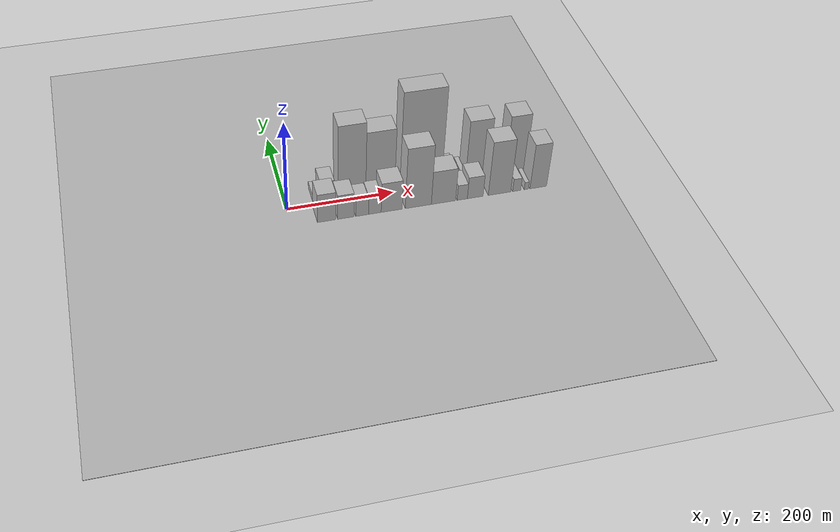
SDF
<?xml version="1.0" encoding="utf-8"?>

<sdf version="1.6">

   <world name="default">

      <gui fullscreen="0">

         <camera name="user_camera">

            <pose>-15 0 4.57585 0 0 0</pose>

            <view_controller>orbit</view_controller>

         </camera>

      </gui>

      <scene>

         <sky>

           <clouds>

             <speed>12</speed>

           </clouds>

         </sky>

         <ambient>0.4 0.4 0.4 1</ambient>

         <background>0.7 0.7 0.7 1</background>

         <shadows>1</shadows>

      </scene>

      <gravity>0 0 -9.8066</gravity>

      <magnetic_field>6e-06 2.3e-05 -4.2e-05</magnetic_field>

      <physics default="0" name="default_physics" type="ode">

         <ode>

            <solver>

               <type>quick</type>

               <iters>10</iters>

               <sor>1.0</sor>

               <use_dynamic_moi_rescaling>0</use_dynamic_moi_rescaling>

            </solver>

            <constraints>

               <cfm>0</cfm>

               <erp>0.2</erp>

               <contact_max_correcting_vel>100</contact_max_correcting_vel>

               <contact_surface_layer>0.001</contact_surface_layer>

            </constraints>

         </ode>

         <max_step_size>0.004</max_step_size>

         <real_time_factor>1</real_time_factor>

         <real_time_update_rate>250</real_time_update_rate>

      </physics>

      <light name="sun" type="directional">

         <cast_shadows>1</cast_shadows>

         <pose>0 0 10 0 0 0</pose>

         <diffuse>0.8 0.8 0.8 1</diffuse>

         <specular>0.2 0.2 0.2 1</specular>

         <attenuation>

            <range>1000</range>

            <constant>0.9</constant>

            <linear>0.01</linear>

            <quadratic>0.001</quadratic>

         </attenuation>

         <direction>-0.5 0.1 -0.9</direction>

      </light>

      <include>

         <name>ground_plane_1</name>

         <uri>model://HANNAS_ground_plane</uri>

         <pose>0 0 0  0 0 0</pose>

      </include>

      <include>

         <name>ground_plane_2</name>

         <uri>model://HANNAS_ground_plane</uri>

         <pose>100 0 0  0 0 0</pose>

      </include>

      <model name="building_1">

         <static>1</static>

         <pose frame="">52.5862 27.5000 0 0.000000 0.000000 1.570796</pose>

         <link name="link">

            <pose frame="">0 0 7.50 0 0 0</pose>

            <collision name="collision">

               <geometry>

                  <box>

                     <size>40.0000 7.1725 15.0000</size>

                  </box>

               </geometry>

               <max_contacts>10</max_contacts>

               <surface>

                  <contact>

                     <ode/>

                  </contact>

                  <bounce/>

                  <friction>

                     <torsional>

                        <ode/>

                     </torsional>

                     <ode/>

                  </friction>

               </surface>

            </collision>

            <visual name="visual">

               <cast_shadows>0</cast_shadows>

               <geometry>

                  <box>

                     <size>40.0000 7.1725 15.0000</size>

                  </box>

               </geometry>

               <material>

                  <script>

                     <uri>model://HANNAS_wall/materials/scripts</uri>

                     <uri>model://HANNAS_wall/materials/textures</uri>

                     <name>vrc/HANNAS_wall</name>

                  </script>

               </material>

            </visual>

            <self_collide>0</self_collide>

            <enable_wind>0</enable_wind>

            <kinematic>0</kinematic>

         </link>

      </model>

      <model name="building_2">

         <static>1</static>

         <pose frame="">59.6417 27.5000 0 0.000000 0.000000 1.570796</pose>

         <link name="link">

            <pose frame="">0 0 7.50 0 0 0</pose>

            <collision name="collision">

               <geometry>

                  <box>

                     <size>40.0000 6.9385 15.0000</size>

                  </box>

               </geometry>

               <max_contacts>10</max_contacts>

               <surface>

                  <contact>

                     <ode/>

                  </contact>

                  <bounce/>

                  <friction>

                     <torsional>

                        <ode/>

                     </torsional>

                     <ode/>

                  </friction>

               </surface>

            </collision>

            <visual name="visual">

               <cast_shadows>0</cast_shadows>

               <geometry>

                  <box>

                     <size>40.0000 6.9385 15.0000</size>

                  </box>

               </geometry>

               <material>

                  <script>

                     <uri>model://HANNAS_wall/materials/scripts</uri>

                     <uri>model://HANNAS_wall/materials/textures</uri>

                     <name>vrc/HANNAS_wall</name>

                  </script>

               </material>

            </visual>

            <self_collide>0</self_collide>

            <enable_wind>0</enable_wind>

            <kinematic>0</kinematic>

         </link>

      </model>

      <model name="building_3">

         <static>1</static>

         <pose frame="">76.4213 27.5000 0 0.000000 0.000000 1.570796</pose>

         <link name="link">

            <pose frame="">0 0 22.50 0 0 0</pose>

            <collision name="collision">

               <geometry>

                  <box>

                     <size>40.0000 26.6205 45.0000</size>

                  </box>

               </geometry>

               <max_contacts>10</max_contacts>

               <surface>

                  <contact>

                     <ode/>

                  </contact>

                  <bounce/>

                  <friction>

                     <torsional>

                        <ode/>

                     </torsional>

                     <ode/>

                  </friction>

               </surface>

            </collision>

            <visual name="visual">

               <cast_shadows>0</cast_shadows>

               <geometry>

                  <box>

                     <size>40.0000 26.6205 45.0000</size>

                  </box>

               </geometry>

               <material>

                  <script>

                     <uri>model://HANNAS_wall/materials/scripts</uri>

                     <uri>model://HANNAS_wall/materials/textures</uri>

                     <name>vrc/HANNAS_wall</name>

                  </script>

               </material>

            </visual>

            <self_collide>0</self_collide>

            <enable_wind>0</enable_wind>

            <kinematic>0</kinematic>

         </link>

      </model>

      <model name="building_4">

         <static>1</static>

         <pose frame="">122.6870 27.5000 0 0.000000 0.000000 1.570796</pose>

         <link name="link">

            <pose frame="">0 0 84.00 0 0 0</pose>

            <collision name="collision">

               <geometry>

                  <box>

                     <size>40.0000 51.9109 168.0000</size>

                  </box>

               </geometry>

               <max_contacts>10</max_contacts>

               <surface>

                  <contact>

                     <ode/>

                  </contact>

                  <bounce/>

                  <friction>

                     <torsional>

                        <ode/>

                     </torsional>

                     <ode/>

                  </friction>

               </surface>

            </collision>

            <visual name="visual">

               <cast_shadows>0</cast_shadows>

               <geometry>

                  <box>

                     <size>40.0000 51.9109 168.0000</size>

                  </box>

               </geometry>

               <material>

                  <script>

                     <uri>model://HANNAS_wall/materials/scripts</uri>

                     <uri>model://HANNAS_wall/materials/textures</uri>

                     <name>vrc/HANNAS_wall</name>

                  </script>

               </material>

            </visual>

            <self_collide>0</self_collide>

            <enable_wind>0</enable_wind>

            <kinematic>0</kinematic>

         </link>

      </model>

      <model name="building_5">

         <static>1</static>

         <pose frame="">176.1546 27.5000 0 0.000000 0.000000 1.570796</pose>

         <link name="link">

            <pose frame="">0 0 72.00 0 0 0</pose>

            <collision name="collision">

               <geometry>

                  <box>

                     <size>40.0000 55.0244 144.0000</size>

                  </box>

               </geometry>

               <max_contacts>10</max_contacts>

               <surface>

                  <contact>

                     <ode/>

                  </contact>

                  <bounce/>

                  <friction>

                     <torsional>

                        <ode/>

                     </torsional>

                     <ode/>

                  </friction>

               </surface>

            </collision>

            <visual name="visual">

               <cast_shadows>0</cast_shadows>

               <geometry>

                  <box>

                     <size>40.0000 55.0244 144.0000</size>

                  </box>

               </geometry>

               <material>

                  <script>

                     <uri>model://HANNAS_wall/materials/scripts</uri>

                     <uri>model://HANNAS_wall/materials/textures</uri>

                     <name>vrc/HANNAS_wall</name>

                  </script>

               </material>

            </visual>

            <self_collide>0</self_collide>

            <enable_wind>0</enable_wind>

            <kinematic>0</kinematic>

         </link>

      </model>

      <model name="building_6">

         <static>1</static>

         <pose frame="">253.8679 27.5000 0 0.000000 0.000000 1.570796</pose>

         <link name="link">

            <pose frame="">0 0 111.00 0 0 0</pose>

            <collision name="collision">

               <geometry>

                  <box>

                     <size>40.0000 80.4021 222.0000</size>

                  </box>

               </geometry>

               <max_contacts>10</max_contacts>

               <surface>

                  <contact>

                     <ode/>

                  </contact>

                  <bounce/>

                  <friction>

                     <torsional>

                        <ode/>

                     </torsional>

                     <ode/>

                  </friction>

               </surface>

            </collision>

            <visual name="visual">

               <cast_shadows>0</cast_shadows>

               <geometry>

                  <box>

                     <size>40.0000 80.4021 222.0000</size>

                  </box>

               </geometry>

               <material>

                  <script>

                     <uri>model://HANNAS_wall/materials/scripts</uri>

                     <uri>model://HANNAS_wall/materials/textures</uri>

                     <name>vrc/HANNAS_wall</name>

                  </script>

               </material>

            </visual>

            <self_collide>0</self_collide>

            <enable_wind>0</enable_wind>

            <kinematic>0</kinematic>

         </link>

      </model>

      <model name="building_7">

         <static>1</static>

         <pose frame="">310.3501 27.5000 0 0.000000 0.000000 1.570796</pose>

         <link name="link">

            <pose frame="">0 0 16.50 0 0 0</pose>

            <collision name="collision">

               <geometry>

                  <box>

                     <size>40.0000 16.5623 33.0000</size>

                  </box>

               </geometry>

               <max_contacts>10</max_contacts>

               <surface>

                  <contact>

                     <ode/>

                  </contact>

                  <bounce/>

                  <friction>

                     <torsional>

                        <ode/>

                     </torsional>

                     <ode/>

                  </friction>

               </surface>

            </collision>

            <visual name="visual">

               <cast_shadows>0</cast_shadows>

               <geometry>

                  <box>

                     <size>40.0000 16.5623 33.0000</size>

                  </box>

               </geometry>

               <material>

                  <script>

                     <uri>model://HANNAS_wall/materials/scripts</uri>

                     <uri>model://HANNAS_wall/materials/textures</uri>

                     <name>vrc/HANNAS_wall</name>

                  </script>

               </material>

            </visual>

            <self_collide>0</self_collide>

            <enable_wind>0</enable_wind>

            <kinematic>0</kinematic>

         </link>

      </model>

      <model name="building_8">

         <static>1</static>

         <pose frame="">333.0419 27.5000 0 0.000000 0.000000 1.570796</pose>

         <link name="link">

            <pose frame="">0 0 10.50 0 0 0</pose>

            <collision name="collision">

               <geometry>

                  <box>

                     <size>40.0000 8.8214 21.0000</size>

                  </box>

               </geometry>

               <max_contacts>10</max_contacts>

               <surface>

                  <contact>

                     <ode/>

                  </contact>

                  <bounce/>

                  <friction>

                     <torsional>

                        <ode/>

                     </torsional>

                     <ode/>

                  </friction>

               </surface>

            </collision>

            <visual name="visual">

               <cast_shadows>0</cast_shadows>

               <geometry>

                  <box>

                     <size>40.0000 8.8214 21.0000</size>

                  </box>

               </geometry>

               <material>

                  <script>

                     <uri>model://HANNAS_wall/materials/scripts</uri>

                     <uri>model://HANNAS_wall/materials/textures</uri>

                     <name>vrc/HANNAS_wall</name>

                  </script>

               </material>

            </visual>

            <self_collide>0</self_collide>

            <enable_wind>0</enable_wind>

            <kinematic>0</kinematic>

         </link>

      </model>

      <model name="building_9">

         <static>1</static>

         <pose frame="">363.0680 27.5000 0 0.000000 0.000000 1.570796</pose>

         <link name="link">

            <pose frame="">0 0 67.50 0 0 0</pose>

            <collision name="collision">

               <geometry>

                  <box>

                     <size>40.0000 45.2308 135.0000</size>

                  </box>

               </geometry>

               <max_contacts>10</max_contacts>

               <surface>

                  <contact>

                     <ode/>

                  </contact>

                  <bounce/>

                  <friction>

                     <torsional>

                        <ode/>

                     </torsional>

                     <ode/>

                  </friction>

               </surface>

            </collision>

            <visual name="visual">

               <cast_shadows>0</cast_shadows>

               <geometry>

                  <box>

                     <size>40.0000 45.2308 135.0000</size>

                  </box>

               </geometry>

               <material>

                  <script>

                     <uri>model://HANNAS_wall/materials/scripts</uri>

                     <uri>model://HANNAS_wall/materials/textures</uri>

                     <name>vrc/HANNAS_wall</name>

                  </script>

               </material>

            </visual>

            <self_collide>0</self_collide>

            <enable_wind>0</enable_wind>

            <kinematic>0</kinematic>

         </link>

      </model>

      <model name="building_10">

         <static>1</static>

         <pose frame="">398.0958 27.5000 0 0.000000 0.000000 1.570796</pose>

         <link name="link">

            <pose frame="">0 0 22.50 0 0 0</pose>

            <collision name="collision">

               <geometry>

                  <box>

                     <size>40.0000 24.8249 45.0000</size>

                  </box>

               </geometry>

               <max_contacts>10</max_contacts>

               <surface>

                  <contact>

                     <ode/>

                  </contact>

                  <bounce/>

                  <friction>

                     <torsional>

                        <ode/>

                     </torsional>

                     <ode/>

                  </friction>

               </surface>

            </collision>

            <visual name="visual">

               <cast_shadows>0</cast_shadows>

               <geometry>

                  <box>

                     <size>40.0000 24.8249 45.0000</size>

                  </box>

               </geometry>

               <material>

                  <script>

                     <uri>model://HANNAS_wall/materials/scripts</uri>

                     <uri>model://HANNAS_wall/materials/textures</uri>

                     <name>vrc/HANNAS_wall</name>

                  </script>

               </material>

            </visual>

            <self_collide>0</self_collide>

            <enable_wind>0</enable_wind>

            <kinematic>0</kinematic>

         </link>

      </model>

      <model name="building_11">

         <static>1</static>

         <pose frame="">438.3872 27.5000 0 0.000000 0.000000 1.570796</pose>

         <link name="link">

            <pose frame="">0 0 66.00 0 0 0</pose>

            <collision name="collision">

               <geometry>

                  <box>

                     <size>40.0000 39.7577 132.0000</size>

                  </box>

               </geometry>

               <max_contacts>10</max_contacts>

               <surface>

                  <contact>

                     <ode/>

                  </contact>

                  <bounce/>

                  <friction>

                     <torsional>

                        <ode/>

                     </torsional>

                     <ode/>

                  </friction>

               </surface>

            </collision>

            <visual name="visual">

               <cast_shadows>0</cast_shadows>

               <geometry>

                  <box>

                     <size>40.0000 39.7577 132.0000</size>

                  </box>

               </geometry>

               <material>

                  <script>

                     <uri>model://HANNAS_wall/materials/scripts</uri>

                     <uri>model://HANNAS_wall/materials/textures</uri>

                     <name>vrc/HANNAS_wall</name>

                  </script>

               </material>

            </visual>

            <self_collide>0</self_collide>

            <enable_wind>0</enable_wind>

            <kinematic>0</kinematic>

         </link>

      </model>

      <model name="building_12">

         <static>1</static>

         <pose frame="">63.1064 -27.5000 0 0.000000 0.000000 1.570796</pose>

         <link name="link">

            <pose frame="">0 0 33.00 0 0 0</pose>

            <collision name="collision">

               <geometry>

                  <box>

                     <size>40.0000 34.2128 66.0000</size>

                  </box>

               </geometry>

               <max_contacts>10</max_contacts>

               <surface>

                  <contact>

                     <ode/>

                  </contact>

                  <bounce/>

                  <friction>

                     <torsional>

                        <ode/>

                     </torsional>

                     <ode/>

                  </friction>

               </surface>

            </collision>

            <visual name="visual">

               <cast_shadows>0</cast_shadows>

               <geometry>

                  <box>

                     <size>40.0000 34.2128 66.0000</size>

                  </box>

               </geometry>

               <material>

                  <script>

                     <uri>model://HANNAS_wall/materials/scripts</uri>

                     <uri>model://HANNAS_wall/materials/textures</uri>

                     <name>vrc/HANNAS_wall</name>

                  </script>

               </material>

            </visual>

            <self_collide>0</self_collide>

            <enable_wind>0</enable_wind>

            <kinematic>0</kinematic>

         </link>

      </model>

      <model name="building_13">

         <static>1</static>

         <pose frame="">98.3909 -27.5000 0 0.000000 0.000000 1.570796</pose>

         <link name="link">

            <pose frame="">0 0 28.50 0 0 0</pose>

            <collision name="collision">

               <geometry>

                  <box>

                     <size>40.0000 30.3562 57.0000</size>

                  </box>

               </geometry>

               <max_contacts>10</max_contacts>

               <surface>

                  <contact>

                     <ode/>

                  </contact>

                  <bounce/>

                  <friction>

                     <torsional>

                        <ode/>

                     </torsional>

                     <ode/>

                  </friction>

               </surface>

            </collision>

            <visual name="visual">

               <cast_shadows>0</cast_shadows>

               <geometry>

                  <box>

                     <size>40.0000 30.3562 57.0000</size>

                  </box>

               </geometry>

               <material>

                  <script>

                     <uri>model://HANNAS_wall/materials/scripts</uri>

                     <uri>model://HANNAS_wall/materials/textures</uri>

                     <name>vrc/HANNAS_wall</name>

                  </script>

               </material>

            </visual>

            <self_collide>0</self_collide>

            <enable_wind>0</enable_wind>

            <kinematic>0</kinematic>

         </link>

      </model>

      <model name="building_14">

         <static>1</static>

         <pose frame="">128.3866 -27.5000 0 0.000000 0.000000 1.570796</pose>

         <link name="link">

            <pose frame="">0 0 21.00 0 0 0</pose>

            <collision name="collision">

               <geometry>

                  <box>

                     <size>40.0000 23.6353 42.0000</size>

                  </box>

               </geometry>

               <max_contacts>10</max_contacts>

               <surface>

                  <contact>

                     <ode/>

                  </contact>

                  <bounce/>

                  <friction>

                     <torsional>

                        <ode/>

                     </torsional>

                     <ode/>

                  </friction>

               </surface>

            </collision>

            <visual name="visual">

               <cast_shadows>0</cast_shadows>

               <geometry>

                  <box>

                     <size>40.0000 23.6353 42.0000</size>

                  </box>

               </geometry>

               <material>

                  <script>

                     <uri>model://HANNAS_wall/materials/scripts</uri>

                     <uri>model://HANNAS_wall/materials/textures</uri>

                     <name>vrc/HANNAS_wall</name>

                  </script>

               </material>

            </visual>

            <self_collide>0</self_collide>

            <enable_wind>0</enable_wind>

            <kinematic>0</kinematic>

         </link>

      </model>

      <model name="building_15">

         <static>1</static>

         <pose frame="">151.9948 -27.5000 0 0.000000 0.000000 1.570796</pose>

         <link name="link">

            <pose frame="">0 0 22.50 0 0 0</pose>

            <collision name="collision">

               <geometry>

                  <box>

                     <size>40.0000 23.5810 45.0000</size>

                  </box>

               </geometry>

               <max_contacts>10</max_contacts>

               <surface>

                  <contact>

                     <ode/>

                  </contact>

                  <bounce/>

                  <friction>

                     <torsional>

                        <ode/>

                     </torsional>

                     <ode/>

                  </friction>

               </surface>

            </collision>

            <visual name="visual">

               <cast_shadows>0</cast_shadows>

               <geometry>

                  <box>

                     <size>40.0000 23.5810 45.0000</size>

                  </box>

               </geometry>

               <material>

                  <script>

                     <uri>model://HANNAS_wall/materials/scripts</uri>

                     <uri>model://HANNAS_wall/materials/textures</uri>

                     <name>vrc/HANNAS_wall</name>

                  </script>

               </material>

            </visual>

            <self_collide>0</self_collide>

            <enable_wind>0</enable_wind>

            <kinematic>0</kinematic>

         </link>

      </model>

      <model name="building_16">

         <static>1</static>

         <pose frame="">183.3868 -27.5000 0 0.000000 0.000000 1.570796</pose>

         <link name="link">

            <pose frame="">0 0 34.50 0 0 0</pose>

            <collision name="collision">

               <geometry>

                  <box>

                     <size>40.0000 39.2031 69.0000</size>

                  </box>

               </geometry>

               <max_contacts>10</max_contacts>

               <surface>

                  <contact>

                     <ode/>

                  </contact>

                  <bounce/>

                  <friction>

                     <torsional>

                        <ode/>

                     </torsional>

                     <ode/>

                  </friction>

               </surface>

            </collision>

            <visual name="visual">

               <cast_shadows>0</cast_shadows>

               <geometry>

                  <box>

                     <size>40.0000 39.2031 69.0000</size>

                  </box>

               </geometry>

               <material>

                  <script>

                     <uri>model://HANNAS_wall/materials/scripts</uri>

                     <uri>model://HANNAS_wall/materials/textures</uri>

                     <name>vrc/HANNAS_wall</name>

                  </script>

               </material>

            </visual>

            <self_collide>0</self_collide>

            <enable_wind>0</enable_wind>

            <kinematic>0</kinematic>

         </link>

      </model>

      <model name="building_17">

         <static>1</static>

         <pose frame="">233.5523 -27.5000 0 0.000000 0.000000 1.570796</pose>

         <link name="link">

            <pose frame="">0 0 70.50 0 0 0</pose>

            <collision name="collision">

               <geometry>

                  <box>

                     <size>40.0000 49.1278 141.0000</size>

                  </box>

               </geometry>

               <max_contacts>10</max_contacts>

               <surface>

                  <contact>

                     <ode/>

                  </contact>

                  <bounce/>

                  <friction>

                     <torsional>

                        <ode/>

                     </torsional>

                     <ode/>

                  </friction>

               </surface>

            </collision>

            <visual name="visual">

               <cast_shadows>0</cast_shadows>

               <geometry>

                  <box>

                     <size>40.0000 49.1278 141.0000</size>

                  </box>

               </geometry>

               <material>

                  <script>

                     <uri>model://HANNAS_wall/materials/scripts</uri>

                     <uri>model://HANNAS_wall/materials/textures</uri>

                     <name>vrc/HANNAS_wall</name>

                  </script>

               </material>

            </visual>

            <self_collide>0</self_collide>

            <enable_wind>0</enable_wind>

            <kinematic>0</kinematic>

         </link>

      </model>

      <model name="building_18">

         <static>1</static>

         <pose frame="">281.1317 -27.5000 0 0.000000 0.000000 1.570796</pose>

         <link name="link">

            <pose frame="">0 0 39.00 0 0 0</pose>

            <collision name="collision">

               <geometry>

                  <box>

                     <size>40.0000 46.0310 78.0000</size>

                  </box>

               </geometry>

               <max_contacts>10</max_contacts>

               <surface>

                  <contact>

                     <ode/>

                  </contact>

                  <bounce/>

                  <friction>

                     <torsional>

                        <ode/>

                     </torsional>

                     <ode/>

                  </friction>

               </surface>

            </collision>

            <visual name="visual">

               <cast_shadows>0</cast_shadows>

               <geometry>

                  <box>

                     <size>40.0000 46.0310 78.0000</size>

                  </box>

               </geometry>

               <material>

                  <script>

                     <uri>model://HANNAS_wall/materials/scripts</uri>

                     <uri>model://HANNAS_wall/materials/textures</uri>

                     <name>vrc/HANNAS_wall</name>

                  </script>

               </material>

            </visual>

            <self_collide>0</self_collide>

            <enable_wind>0</enable_wind>

            <kinematic>0</kinematic>

         </link>

      </model>

      <model name="building_19">

         <static>1</static>

         <pose frame="">316.8861 -27.5000 0 0.000000 0.000000 1.570796</pose>

         <link name="link">

            <pose frame="">0 0 18.00 0 0 0</pose>

            <collision name="collision">

               <geometry>

                  <box>

                     <size>40.0000 19.4779 36.0000</size>

                  </box>

               </geometry>

               <max_contacts>10</max_contacts>

               <surface>

                  <contact>

                     <ode/>

                  </contact>

                  <bounce/>

                  <friction>

                     <torsional>

                        <ode/>

                     </torsional>

                     <ode/>

                  </friction>

               </surface>

            </collision>

            <visual name="visual">

               <cast_shadows>0</cast_shadows>

               <geometry>

                  <box>

                     <size>40.0000 19.4779 36.0000</size>

                  </box>

               </geometry>

               <material>

                  <script>

                     <uri>model://HANNAS_wall/materials/scripts</uri>

                     <uri>model://HANNAS_wall/materials/textures</uri>

                     <name>vrc/HANNAS_wall</name>

                  </script>

               </material>

            </visual>

            <self_collide>0</self_collide>

            <enable_wind>0</enable_wind>

            <kinematic>0</kinematic>

         </link>

      </model>

      <model name="building_20">

         <static>1</static>

         <pose frame="">341.6942 -27.5000 0 0.000000 0.000000 1.570796</pose>

         <link name="link">

            <pose frame="">0 0 25.50 0 0 0</pose>

            <collision name="collision">

               <geometry>

                  <box>

                     <size>40.0000 30.1382 51.0000</size>

                  </box>

               </geometry>

               <max_contacts>10</max_contacts>

               <surface>

                  <contact>

                     <ode/>

                  </contact>

                  <bounce/>

                  <friction>

                     <torsional>

                        <ode/>

                     </torsional>

                     <ode/>

                  </friction>

               </surface>

            </collision>

            <visual name="visual">

               <cast_shadows>0</cast_shadows>

               <geometry>

                  <box>

                     <size>40.0000 30.1382 51.0000</size>

                  </box>

               </geometry>

               <material>

                  <script>

                     <uri>model://HANNAS_wall/materials/scripts</uri>

                     <uri>model://HANNAS_wall/materials/textures</uri>

                     <name>vrc/HANNAS_wall</name>

                  </script>

               </material>

            </visual>

            <self_collide>0</self_collide>

            <enable_wind>0</enable_wind>

            <kinematic>0</kinematic>

         </link>

      </model>

      <model name="building_21">

         <static>1</static>

         <pose frame="">388.3381 -27.5000 0 0.000000 0.000000 1.570796</pose>

         <link name="link">

            <pose frame="">0 0 63.00 0 0 0</pose>

            <collision name="collision">

               <geometry>

                  <box>

                     <size>40.0000 43.1497 126.0000</size>

                  </box>

               </geometry>

               <max_contacts>10</max_contacts>

               <surface>

                  <contact>

                     <ode/>

                  </contact>

                  <bounce/>

                  <friction>

                     <torsional>

                        <ode/>

                     </torsional>

                     <ode/>

                  </friction>

               </surface>

            </collision>

            <visual name="visual">

               <cast_shadows>0</cast_shadows>

               <geometry>

                  <box>

                     <size>40.0000 43.1497 126.0000</size>

                  </box>

               </geometry>

               <material>

                  <script>

                     <uri>model://HANNAS_wall/materials/scripts</uri>

                     <uri>model://HANNAS_wall/materials/textures</uri>

                     <name>vrc/HANNAS_wall</name>

                  </script>

               </material>

            </visual>

            <self_collide>0</self_collide>

            <enable_wind>0</enable_wind>

            <kinematic>0</kinematic>

         </link>

      </model>

      <model name="building_22">

         <static>1</static>

         <pose frame="">421.6806 -27.5000 0 0.000000 0.000000 1.570796</pose>

         <link name="link">

            <pose frame="">0 0 15.00 0 0 0</pose>

            <collision name="collision">

               <geometry>

                  <box>

                     <size>40.0000 15.5352 30.0000</size>

                  </box>

               </geometry>

               <max_contacts>10</max_contacts>

               <surface>

                  <contact>

                     <ode/>

                  </contact>

                  <bounce/>

                  <friction>

                     <torsional>

                        <ode/>

                     </torsional>

                     <ode/>

                  </friction>

               </surface>

            </collision>

            <visual name="visual">

               <cast_shadows>0</cast_shadows>

               <geometry>

                  <box>

                     <size>40.0000 15.5352 30.0000</size>

                  </box>

               </geometry>

               <material>

                  <script>

                     <uri>model://HANNAS_wall/materials/scripts</uri>

                     <uri>model://HANNAS_wall/materials/textures</uri>

                     <name>vrc/HANNAS_wall</name>

                  </script>

               </material>

            </visual>

            <self_collide>0</self_collide>

            <enable_wind>0</enable_wind>

            <kinematic>0</kinematic>

         </link>

      </model>

      <model name="building_23">

         <static>1</static>

         <pose frame="">440.4820 -27.5000 0 0.000000 0.000000 1.570796</pose>

         <link name="link">

            <pose frame="">0 0 9.00 0 0 0</pose>

            <collision name="collision">

               <geometry>

                  <box>

                     <size>40.0000 8.0678 18.0000</size>

                  </box>

               </geometry>

               <max_contacts>10</max_contacts>

               <surface>

                  <contact>

                     <ode/>

                  </contact>

                  <bounce/>

                  <friction>

                     <torsional>

                        <ode/>

                     </torsional>

                     <ode/>

                  </friction>

               </surface>

            </collision>

            <visual name="visual">

               <cast_shadows>0</cast_shadows>

               <geometry>

                  <box>

                     <size>40.0000 8.0678 18.0000</size>

                  </box>

               </geometry>

               <material>

                  <script>

                     <uri>model://HANNAS_wall/materials/scripts</uri>

                     <uri>model://HANNAS_wall/materials/textures</uri>

                     <name>vrc/HANNAS_wall</name>

                  </script>

               </material>

            </visual>

            <self_collide>0</self_collide>

            <enable_wind>0</enable_wind>

            <kinematic>0</kinematic>

         </link>

      </model>

      <model name="building_24">

         <static>1</static>

         <pose frame="">463.7548 -27.5000 0 0.000000 0.000000 1.570796</pose>

         <link name="link">

            <pose frame="">0 0 52.50 0 0 0</pose>

            <collision name="collision">

               <geometry>

                  <box>

                     <size>40.0000 32.4778 105.0000</size>

                  </box>

               </geometry>

               <max_contacts>10</max_contacts>

               <surface>

                  <contact>

                     <ode/>

                  </contact>

                  <bounce/>

                  <friction>

                     <torsional>

                        <ode/>

                     </torsional>

                     <ode/>

                  </friction>

               </surface>

            </collision>

            <visual name="visual">

               <cast_shadows>0</cast_shadows>

               <geometry>

                  <box>

                     <size>40.0000 32.4778 105.0000</size>

                  </box>

               </geometry>

               <material>

                  <script>

                     <uri>model://HANNAS_wall/materials/scripts</uri>

                     <uri>model://HANNAS_wall/materials/textures</uri>

                     <name>vrc/HANNAS_wall</name>

                  </script>

               </material>

            </visual>

            <self_collide>0</self_collide>

            <enable_wind>0</enable_wind>

            <kinematic>0</kinematic>

         </link>

      </model>

   </world>

</sdf>

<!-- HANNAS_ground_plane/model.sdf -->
<sdf version="1.4">
<model name="HANNAS_ground_plane">
  <static>true</static>
    <link name="link">
      <collision name="collision">
        <geometry>
          <plane>
            <normal>0 0 1</normal>
            <size>1000 1000</size>
          </plane>
        </geometry>
        <surface>
          <friction>
            <ode>
              <mu>100</mu>
              <mu2>50</mu2>
            </ode>
          </friction>
        </surface>
      </collision>
      <visual name="visual">
        <cast_shadows>false</cast_shadows>
        <geometry>
          <plane>
            <normal>0 0 1</normal>
            <size>1000 1000</size>
          </plane>
        </geometry>
        <material>
          <script>
            <uri>model://HANNAS_ground_plane/materials/scripts/HANNAS_ground_plane.material</uri>
	    <uri>model://HANNAS_ground_plane/materials/textures</uri>
            <name>HANNASGroundPlane/Image</name>
          </script>
        </material>
      </visual>
    </link>
  </model>
</sdf>
